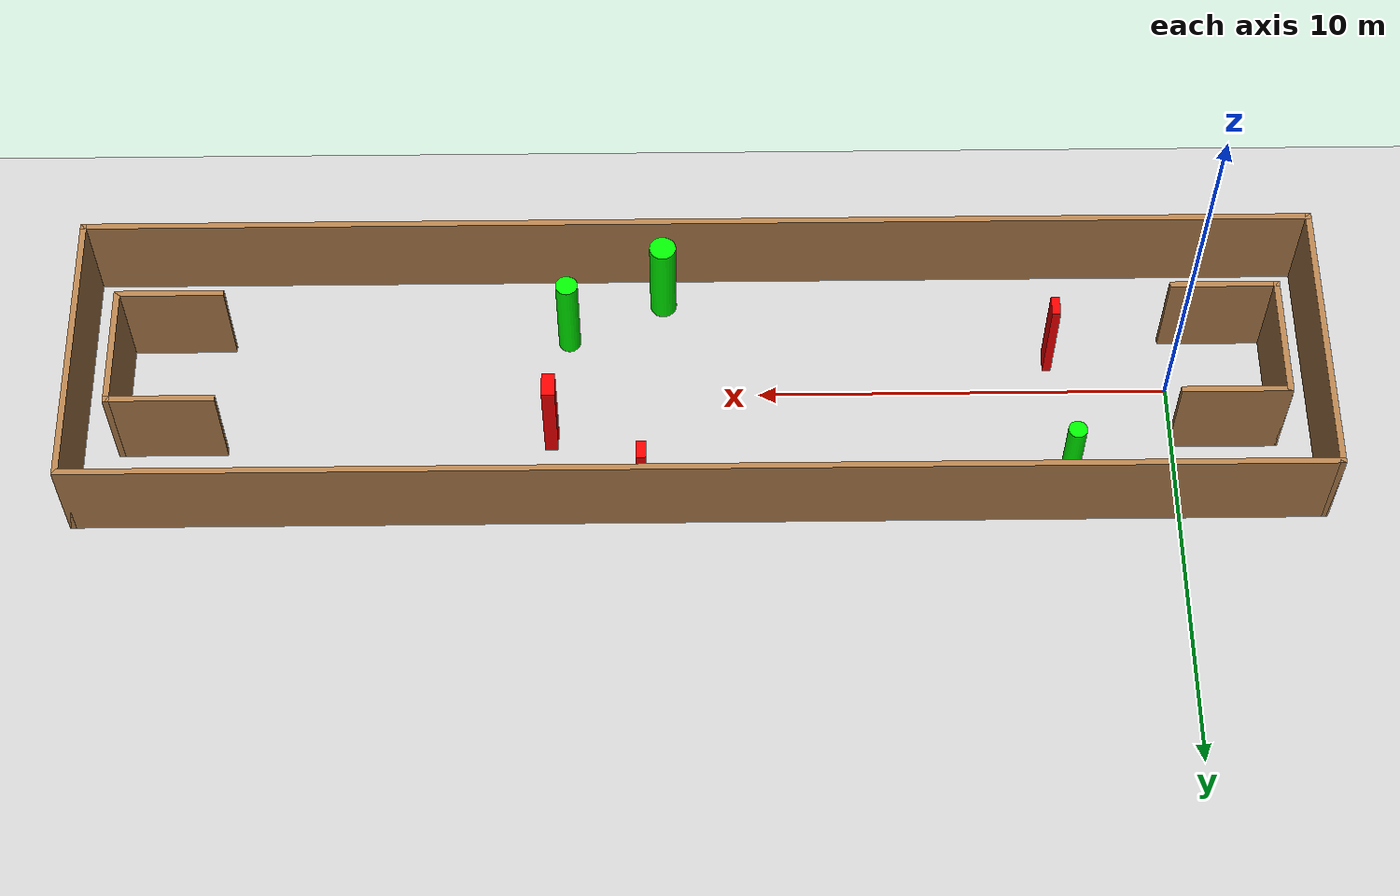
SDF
<sdf version="1.7">
 <world name="default">
  <light name="sun" type="directional">
   <pose>0 0 10 0 -0 0</pose>
   <diffuse>0.8 0.8 0.8 1</diffuse>
   <specular>0.2 0.2 0.2 1</specular>
   <attenuation>
    <range>1000</range>
    <constant>0.9</constant>
    <linear>0.01</linear>
    <quadratic>0.001</quadratic>
   </attenuation>
   <direction>-0.5 0.1 -0.9</direction>
   <spot><inner_angle>0</inner_angle><outer_angle>0</outer_angle><falloff>0</falloff></spot>
  </light>
  <model name="ground_plane">
   <static>1</static>
   <link name="link">
    <collision name="collision">
     <geometry><plane><normal>0 0 1</normal><size>100 100</size></plane></geometry>
     <surface>
      <contact><collide_bitmask>65535</collide_bitmask></contact>
      <friction><ode><mu>100</mu><mu2>50</mu2></ode></friction>
     </surface>
    </collision>
    <visual name="visual">
     <cast_shadows>0</cast_shadows>
     <geometry><plane><normal>0 0 1</normal><size>100 100</size></plane></geometry>
     <material>
      <script><uri>file://media/materials/scripts/gazebo.material</uri><name>Gazebo/Grey</name></script>
     </material>
    </visual>
   </link>
  </model>
  <gravity>0 0 -9.8</gravity>
  <magnetic_field>6e-06 2.3e-05 -4.2e-05</magnetic_field>
  <atmosphere type="adiabatic"/>
  <physics type="ode">
   <max_step_size>0.001</max_step_size>
   <real_time_factor>1</real_time_factor>
   <real_time_update_rate>1000</real_time_update_rate>
  </physics>
  <scene><ambient>0.4 0.4 0.4 1</ambient><background>0.7 0.7 0.7 1</background><shadows>1</shadows></scene>
  <spherical_coordinates>
   <surface_model>EARTH_WGS84</surface_model>
   <latitude_deg>0</latitude_deg>
   <longitude_deg>0</longitude_deg>
   <elevation>0</elevation>
   <heading_deg>0</heading_deg>
  </spherical_coordinates>
  <model name="my_base_walls">
   <link name="Wall_0">
    <collision name="Wall_0_Collision">
     <geometry><box><size>7.15 0.15 2.5</size></box></geometry>
     <pose>0 0 1.25 0 -0 0</pose>
    </collision>
    <visual name="Wall_0_Visual">
     <pose>0 0 1.25 0 -0 0</pose>
     <geometry><box><size>7.15 0.15 2.5</size></box></geometry>
     <material>
      <script><uri>file://media/materials/scripts/gazebo.material</uri><name>Gazebo/Wood</name></script>
      <ambient>1 1 1 1</ambient>
     </material>
     <meta><layer>0</layer></meta>
    </visual>
    <pose>-15 0 0 0 -0 1.5708</pose>
   </link>
   <link name="Wall_10">
    <collision name="Wall_10_Collision">
     <geometry><box><size>2.65 0.15 2.5</size></box></geometry>
     <pose>0 0 1.25 0 -0 0</pose>
    </collision>
    <visual name="Wall_10_Visual">
     <pose>0 0 1.25 0 -0 0</pose>
     <geometry><box><size>2.65 0.15 2.5</size></box></geometry>
     <material>
      <script><uri>file://media/materials/scripts/gazebo.material</uri><name>Gazebo/Wood</name></script>
      <ambient>1 1 1 1</ambient>
     </material>
     <meta><layer>0</layer></meta>
    </visual>
    <pose>-12.75 -1.5 0 0 -0 0</pose>
   </link>
   <link name="Wall_12">
    <collision name="Wall_12_Collision">
     <geometry><box><size>2.65 0.15 2.5</size></box></geometry>
     <pose>0 0 1.25 0 -0 0</pose>
    </collision>
    <visual name="Wall_12_Visual">
     <pose>0 0 1.25 0 -0 0</pose>
     <geometry><box><size>2.65 0.15 2.5</size></box></geometry>
     <material>
      <script><uri>file://media/materials/scripts/gazebo.material</uri><name>Gazebo/Wood</name></script>
      <ambient>1 1 1 1</ambient>
     </material>
     <meta><layer>0</layer></meta>
    </visual>
    <pose>-12.75 1.5 0 0 -0 0</pose>
   </link>
   <link name="Wall_14">
    <collision name="Wall_14_Collision">
     <geometry><box><size>3.15 0.15 2.5</size></box></geometry>
     <pose>0 0 1.25 0 -0 0</pose>
    </collision>
    <visual name="Wall_14_Visual">
     <pose>0 0 1.25 0 -0 0</pose>
     <geometry><box><size>3.15 0.15 2.5</size></box></geometry>
     <material>
      <script><uri>file://media/materials/scripts/gazebo.material</uri><name>Gazebo/Wood</name></script>
      <ambient>1 1 1 1</ambient>
     </material>
     <meta><layer>0</layer></meta>
    </visual>
    <pose>14 0 0 0 -0 -1.5708</pose>
   </link>
   <link name="Wall_15">
    <collision name="Wall_15_Collision">
     <geometry><box><size>2.65 0.15 2.5</size></box></geometry>
     <pose>0 0 1.25 0 -0 0</pose>
    </collision>
    <visual name="Wall_15_Visual">
     <pose>0 0 1.25 0 -0 0</pose>
     <geometry><box><size>2.65 0.15 2.5</size></box></geometry>
     <material>
      <script><uri>file://media/materials/scripts/gazebo.material</uri><name>Gazebo/Wood</name></script>
      <ambient>1 1 1 1</ambient>
     </material>
     <meta><layer>0</layer></meta>
    </visual>
    <pose>12.75 -1.5 0 0 -0 3.14159</pose>
   </link>
   <link name="Wall_17">
    <collision name="Wall_17_Collision">
     <geometry><box><size>2.65 0.15 2.5</size></box></geometry>
     <pose>0 0 1.25 0 -0 0</pose>
    </collision>
    <visual name="Wall_17_Visual">
     <pose>0 0 1.25 0 -0 0</pose>
     <geometry><box><size>2.65 0.15 2.5</size></box></geometry>
     <material>
      <script><uri>file://media/materials/scripts/gazebo.material</uri><name>Gazebo/Wood</name></script>
      <ambient>1 1 1 1</ambient>
     </material>
     <meta><layer>0</layer></meta>
    </visual>
    <pose>12.75 1.5 0 0 -0 3.14159</pose>
   </link>
   <link name="Wall_2">
    <collision name="Wall_2_Collision">
     <geometry><box><size>30.15 0.15 2.5</size></box></geometry>
     <pose>0 0 1.25 0 -0 0</pose>
    </collision>
    <visual name="Wall_2_Visual">
     <pose>0 0 1.25 0 -0 0</pose>
     <geometry><box><size>30.15 0.15 2.5</size></box></geometry>
     <material>
      <script><uri>file://media/materials/scripts/gazebo.material</uri><name>Gazebo/Wood</name></script>
      <ambient>1 1 1 1</ambient>
     </material>
     <meta><layer>0</layer></meta>
    </visual>
    <pose>-0 -3.5 0 0 -0 0</pose>
   </link>
   <link name="Wall_4">
    <collision name="Wall_4_Collision">
     <geometry><box><size>30.15 0.15 2.5</size></box></geometry>
     <pose>0 0 1.25 0 -0 0</pose>
    </collision>
    <visual name="Wall_4_Visual">
     <pose>0 0 1.25 0 -0 0</pose>
     <geometry><box><size>30.15 0.15 2.5</size></box></geometry>
     <material>
      <script><uri>file://media/materials/scripts/gazebo.material</uri><name>Gazebo/Wood</name></script>
      <ambient>1 1 1 1</ambient>
     </material>
     <meta><layer>0</layer></meta>
    </visual>
    <pose>-0 3.5 0 0 -0 0</pose>
   </link>
   <link name="Wall_6">
    <collision name="Wall_6_Collision">
     <geometry><box><size>7.15 0.15 2.5</size></box></geometry>
     <pose>0 0 1.25 0 -0 0</pose>
    </collision>
    <visual name="Wall_6_Visual">
     <pose>0 0 1.25 0 -0 0</pose>
     <geometry><box><size>7.15 0.15 2.5</size></box></geometry>
     <material>
      <script><uri>file://media/materials/scripts/gazebo.material</uri><name>Gazebo/Wood</name></script>
      <ambient>1 1 1 1</ambient>
     </material>
     <meta><layer>0</layer></meta>
    </visual>
    <pose>15 0 0 0 -0 -1.5708</pose>
   </link>
   <link name="Wall_9">
    <collision name="Wall_9_Collision">
     <geometry><box><size>3.15 0.15 2.5</size></box></geometry>
     <pose>0 0 1.25 0 -0 0</pose>
    </collision>
    <visual name="Wall_9_Visual">
     <pose>0 0 1.25 0 -0 0</pose>
     <geometry><box><size>3.15 0.15 2.5</size></box></geometry>
     <material>
      <script><uri>file://media/materials/scripts/gazebo.material</uri><name>Gazebo/Wood</name></script>
      <ambient>1 1 1 1</ambient>
     </material>
     <meta><layer>0</layer></meta>
    </visual>
    <pose>-14 0 0 0 -0 -1.5708</pose>
   </link>
   <static>1</static>
   <pose>11.5 0 0 0 -0 0</pose>
  </model>
  <model name="cylinder1">
   <static>1</static>
   <link name="link">
    <inertial>
     <mass>1</mass>
     <inertia><ixx>0.5</ixx><ixy>0</ixy><ixz>0</ixz><iyy>0.5</iyy><iyz>0</iyz><izz>1</izz></inertia>
    </inertial>
    <collision name="collision">
     <geometry><cylinder><radius>0.32423775055269244</radius><length>2.5</length></cylinder></geometry>
    </collision>
    <visual name="visual">
     <geometry><cylinder><radius>0.32423775055269244</radius><length>2.5</length></cylinder></geometry>
     <material>
      <ambient>0 1 0 1</ambient>
      <diffuse>0 1 0 1</diffuse>
      <specular>0.1 0.1 0.1 1</specular>
      <emissive>0 0 0 0</emissive>
     </material>
    </visual>
   </link>
   <pose>12.333954567219909 -2.694671875500213 1.25 0 0 0</pose>
  </model>
  <model name="cylinder2">
   <static>1</static>
   <link name="link">
    <inertial>
     <mass>1</mass>
     <inertia><ixx>0.5</ixx><ixy>0</ixy><ixz>0</ixz><iyy>0.5</iyy><iyz>0</iyz><izz>1</izz></inertia>
    </inertial>
    <collision name="collision">
     <geometry><cylinder><radius>0.22620945668646972</radius><length>2.5</length></cylinder></geometry>
    </collision>
    <visual name="visual">
     <geometry><cylinder><radius>0.22620945668646972</radius><length>2.5</length></cylinder></geometry>
     <material>
      <ambient>0 1 0 1</ambient>
      <diffuse>0 1 0 1</diffuse>
      <specular>0.1 0.1 0.1 1</specular>
      <emissive>0 0 0 0</emissive>
     </material>
    </visual>
   </link>
   <pose>2.6125613493694537 2.5916579876683166 1.25 0 0 0</pose>
  </model>
  <model name="cylinder3">
   <static>1</static>
   <link name="link">
    <inertial>
     <mass>1</mass>
     <inertia><ixx>0.5</ixx><ixy>0</ixy><ixz>0</ixz><iyy>0.5</iyy><iyz>0</iyz><izz>1</izz></inertia>
    </inertial>
    <collision name="collision">
     <geometry><cylinder><radius>0.2683460486611267</radius><length>2.5</length></cylinder></geometry>
    </collision>
    <visual name="visual">
     <geometry><cylinder><radius>0.2683460486611267</radius><length>2.5</length></cylinder></geometry>
     <material>
      <ambient>0 1 0 1</ambient>
      <diffuse>0 1 0 1</diffuse>
      <specular>0.1 0.1 0.1 1</specular>
      <emissive>0 0 0 0</emissive>
     </material>
    </visual>
   </link>
   <pose>14.665320641320351 -1.617462683078618 1.25 0 0 0</pose>
  </model>
  <model name="box1">
   <static>1</static>
   <link name="link">
    <inertial>
     <mass>1</mass>
     <inertia><ixx>0.083</ixx><ixy>0</ixy><ixz>0</ixz><iyy>0.083</iyy><iyz>0</iyz><izz>0.083</izz></inertia>
    </inertial>
    <collision name="collision">
     <geometry><box><size>0.23995431316253182 0.4529120811000043 2.5</size></box></geometry>
    </collision>
    <visual name="visual">
     <geometry><box><size>0.23995431316253182 0.4529120811000043 2.5</size></box></geometry>
     <material>
      <ambient>1 0 0 1</ambient>
      <diffuse>1 0 0 1</diffuse>
      <specular>0.1 0.1 0.1 1</specular>
      <emissive>0 0 0 0</emissive>
     </material>
    </visual>
    <sensor name="my_contact" type="contact">
     <contact><collision>box_collision</collision><topic>__default_topic__</topic></contact>
    </sensor>
   </link>
   <pose>12.87155300495836 3.022314185983408 1.25 0 0 0</pose>
  </model>
  <model name="box2">
   <static>1</static>
   <link name="link">
    <inertial>
     <mass>1</mass>
     <inertia><ixx>0.083</ixx><ixy>0</ixy><ixz>0</ixz><iyy>0.083</iyy><iyz>0</iyz><izz>0.083</izz></inertia>
    </inertial>
    <collision name="collision">
     <geometry><box><size>0.20669478692888377 0.5006512677853818 2.5</size></box></geometry>
    </collision>
    <visual name="visual">
     <geometry><box><size>0.20669478692888377 0.5006512677853818 2.5</size></box></geometry>
     <material>
      <ambient>1 0 0 1</ambient>
      <diffuse>1 0 0 1</diffuse>
      <specular>0.1 0.1 0.1 1</specular>
      <emissive>0 0 0 0</emissive>
     </material>
    </visual>
    <sensor name="my_contact" type="contact">
     <contact><collision>box_collision</collision><topic>__default_topic__</topic></contact>
    </sensor>
   </link>
   <pose>2.878802058676504 -0.913845368954453 1.25 0 0 0</pose>
  </model>
  <model name="box3">
   <static>1</static>
   <link name="link">
    <inertial>
     <mass>1</mass>
     <inertia><ixx>0.083</ixx><ixy>0</ixy><ixz>0</ixz><iyy>0.083</iyy><iyz>0</iyz><izz>0.083</izz></inertia>
    </inertial>
    <collision name="collision">
     <geometry><box><size>0.3197477902395831 0.5978126527645289 2.5</size></box></geometry>
    </collision>
    <visual name="visual">
     <geometry><box><size>0.3197477902395831 0.5978126527645289 2.5</size></box></geometry>
     <material>
      <ambient>1 0 0 1</ambient>
      <diffuse>1 0 0 1</diffuse>
      <specular>0.1 0.1 0.1 1</specular>
      <emissive>0 0 0 0</emissive>
     </material>
    </visual>
    <sensor name="my_contact" type="contact">
     <contact><collision>box_collision</collision><topic>__default_topic__</topic></contact>
    </sensor>
   </link>
   <pose>15.066212273124243 1.2078071037801692 1.25 0 0 0</pose>
  </model>
 </world>
</sdf>
